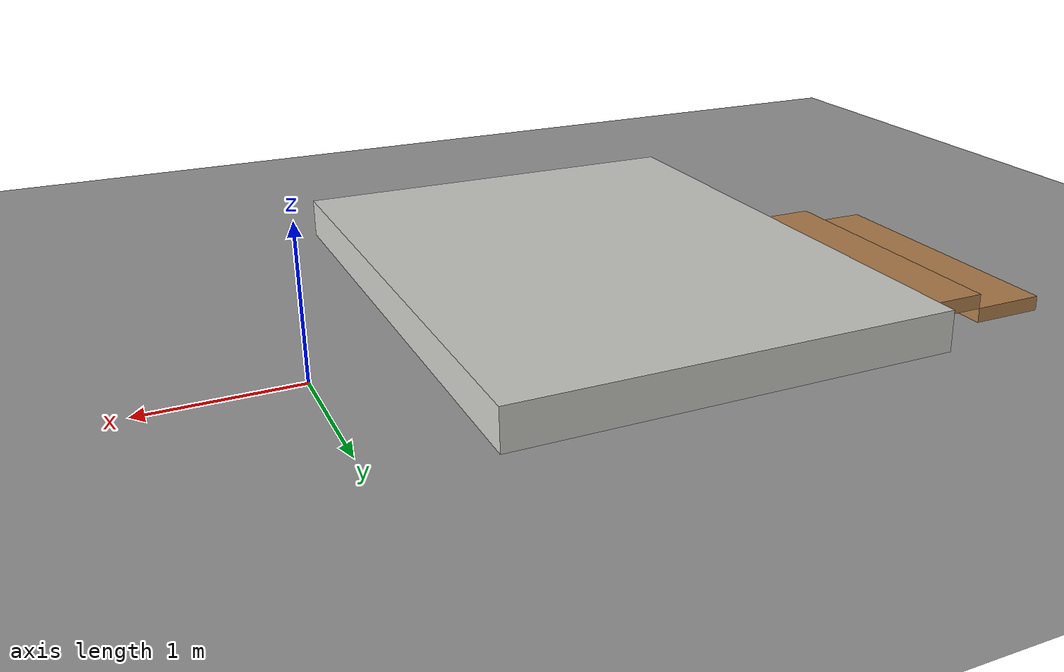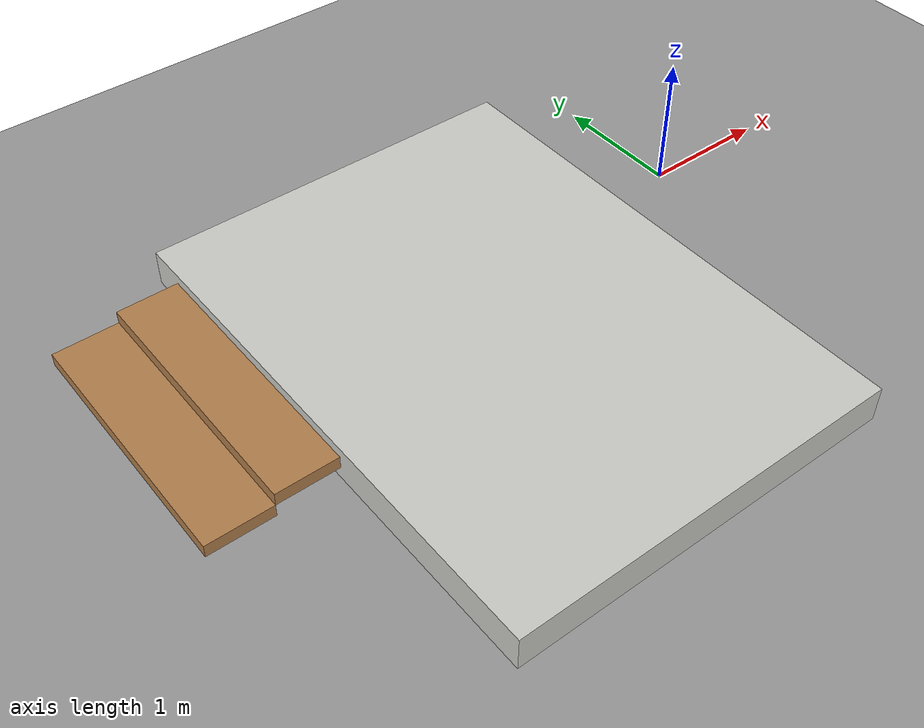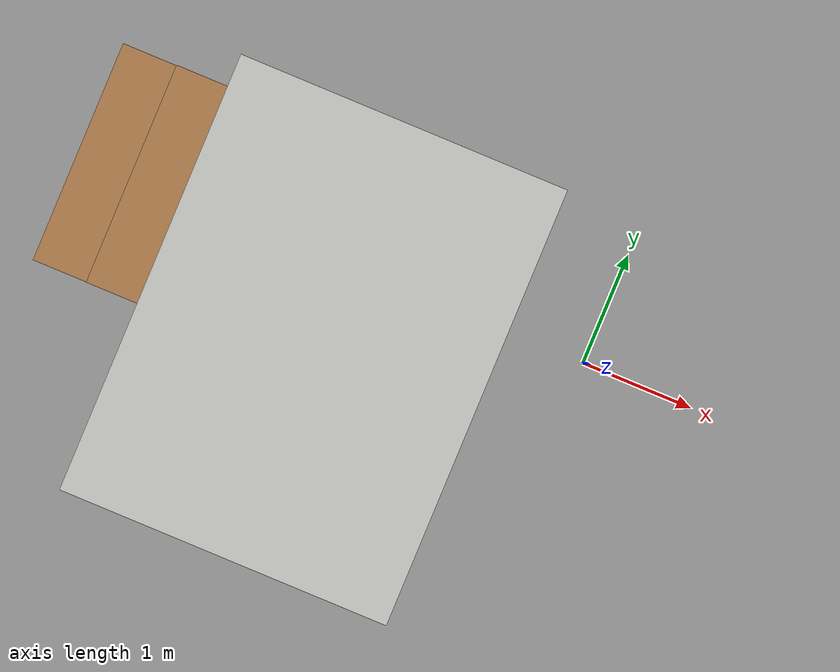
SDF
<?xml version="1.0" ?>
<sdf version="1.5">
<world name="default">

        <physics type="ode">
        <max_step_size>0.001</max_step_size>
        <real_time_factor>1</real_time_factor>
        <real_time_update_rate>1000</real_time_update_rate>
        <gravity>0 0 -9.81</gravity>
            <ode>
                <solver>
                <type>quick</type>
                <iters>200</iters>
                <sor>1.3</sor>
                </solver>
                <constraints>
                <cfm>0.0</cfm>
                <erp>0.2</erp>
                <contact_max_correcting_vel>0.0</contact_max_correcting_vel>
                <contact_surface_layer>0.01</contact_surface_layer>
                </constraints>
            </ode>
        </physics>

        <scene>
        <sky>
            <clouds>
                <speed>12</speed>
            </clouds>
        </sky>
        </scene>
        <!-- A global light source -->
        <include>
            <uri>model://sun</uri>
        </include>
        <!-- A ground plane -->
        <model name='ground_plane_0'>
            <static>1</static>
            <link name='link'>
                <collision name='collision'>
                <geometry>
                    <plane>
                    <normal>0 0 1</normal>
                    <size>100 100</size>
                    </plane>
                </geometry>
                <surface>
                    <friction>
                    <ode>
                        <mu>100000</mu>
                        <mu2>5000</mu2>
                    </ode>
                    </friction>
                    <bounce/>
                    <contact>
                    <ode/>
                    </contact>
                </surface>
                </collision>
                <visual name='visual'>
                <cast_shadows>0</cast_shadows>
                <geometry>
                    <plane>
                    <normal>0 0 1</normal>
                    <size>100 100</size>
                    </plane>
                </geometry>
                <material>
                    <script>
                    <uri>file://media/materials/scripts/gazebo.material</uri>
                    <name>Gazebo/GreyTransparent  </name>
                    </script>
                </material>
                </visual>
                <velocity_decay>
                <linear>0</linear>
                <angular>0</angular>
                </velocity_decay>
                <self_collide>0</self_collide>
                <kinematic>0</kinematic>
                <gravity>1</gravity>
            </link>
            <pose>0.497681 0 0 0 -0 0</pose>
            </model>
        <!-- environment blocks, obstacles or stairs -->

    <model name="static_environment">
        <static>true</static>
            <link name="static_box">
                <pose>-2.2 -0.7 0.14 0 0 0</pose>
                <collision name="static_box_collision">
                    <geometry>
                        <box>
                            <size>3 4 0.28</size>
                        </box>
                    </geometry>
                </collision>
                <visual name="static_box_visual">
                    <geometry>
                        <box>
                            <size>3 4 0.28</size>
                        </box>
                    </geometry>
                    <material>
                        <script>
                            <uri>file://media/materials/scripts/gazebo.material</uri>
                            <name>Gazebo/CeilingTiled </name>
                        </script>
                        <ambient>0.7 0.7 0.9 1</ambient>
                        <diffuse>0.9 0.9 1 1</diffuse>
                        <specular>0.2 0.2 0.2 1</specular>
                        <emissive>0 0 0 1</emissive>
                    </material>
                </visual>
            </link>
    </model>

    <include>
        <uri>model://stairs</uri>
    </include>

</world>

</sdf>

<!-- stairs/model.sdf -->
<sdf version='1.6'>
  <model name='stairs'>
    <pose frame=''>-3.8 0.009 0 0 -0 0</pose>
    <link name='Stairs_1'>
      <visual name='Stairs_1_Visual_0'>
        <pose frame=''>-0.625 -0 0.05 0 -0 1.5708</pose>
        <geometry>
          <box>
            <size>2 0.50 0.1</size>
          </box>
        </geometry>
        <material>
          <script>
            <uri>file://media/materials/scripts/gazebo.material</uri>
            <name>Gazebo/Wood</name>
          </script>
          <ambient>1 1 1 1</ambient>
        </material>
        <meta>
          <layer>0</layer>
        </meta>
      </visual>
      <collision name='Stairs_1_Collision_0'>
        <geometry>
          <box>
            <size>2 0.50 0.1</size>
          </box>
        </geometry>
                <surface>
            <friction>
            <ode>
                <mu>100000</mu>
                <mu2>5000</mu2>
            </ode>
            </friction>
            <bounce/>
            <contact>
            <ode/>
            </contact>
        </surface>
        <pose frame=''>-0.625 -0 0.05 0 -0 1.5708</pose>
      </collision>
      <visual name='Stairs_1_Visual_1'>
        <pose frame=''>-0.125 -0 0.15 0 -0 1.5708</pose>
        <geometry>
          <box>
            <size>2 0.50 0.1</size>
          </box>
        </geometry>
        <material>
          <script>
            <uri>file://media/materials/scripts/gazebo.material</uri>
            <name>Gazebo/WoodPallet </name>
          </script>
          <ambient>1 1 1 1</ambient>
        </material>
        <meta>
          <layer>0</layer>
        </meta>
      </visual>
      <collision name='Stairs_1_Collision_1'>
        <geometry>
          <box>
            <size>2 0.50 0.1</size>
          </box>
        </geometry>
                        <surface>
            <friction>
            <ode>
                <mu>100000</mu>
                <mu2>5000</mu2>
            </ode>
            </friction>
            <bounce/>
            <contact>
            <ode/>
            </contact>
        </surface>
        <pose frame=''>-0.125 -0 0.15 0 -0 1.5708</pose>
      </collision>
    </link>
    <static>1</static>
  </model>
</sdf>
